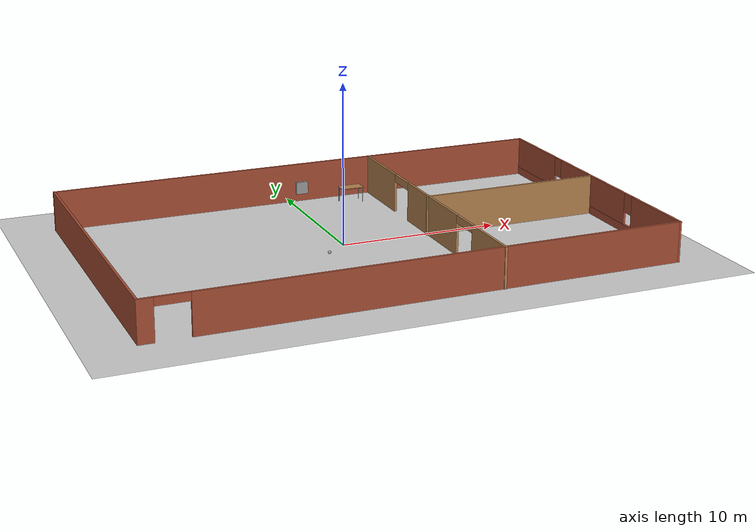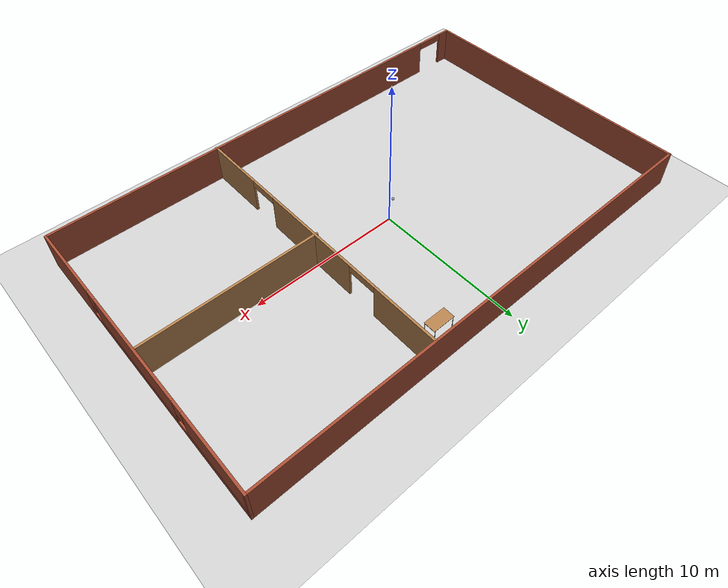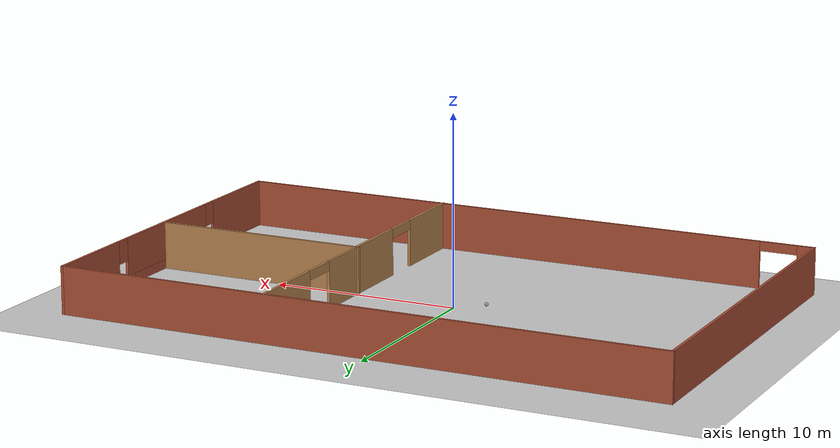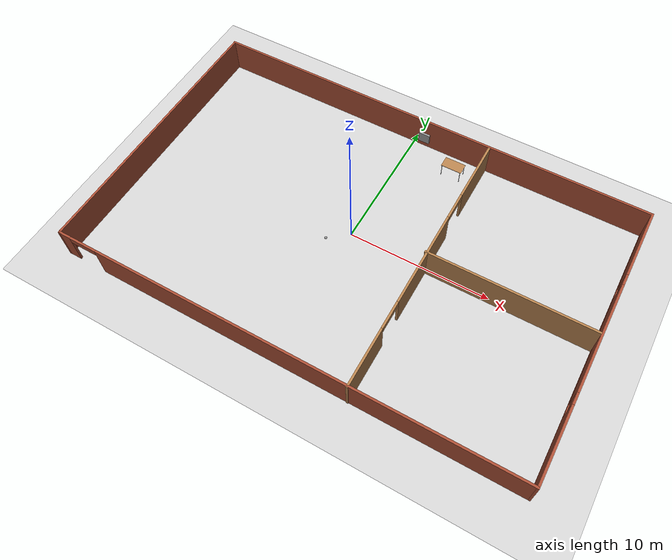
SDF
<sdf version="1.6">
 <world name="default">
  <light name="sun" type="directional">
   <pose>0 0 10 0 -0 0</pose>
   <diffuse>0.8 0.8 0.8 1</diffuse>
   <specular>0.2 0.2 0.2 1</specular>
   <attenuation>
    <range>1000</range>
    <constant>0.9</constant>
    <linear>0.01</linear>
    <quadratic>0.001</quadratic>
   </attenuation>
   <direction>-0.5 0.1 -0.9</direction>
  </light>
  <model name="ground_plane">
   <static>1</static>
   <link name="link">
    <collision name="collision">
     <geometry><plane><normal>0 0 1</normal><size>100 100</size></plane></geometry>
     <surface><friction><ode><mu>100</mu><mu2>50</mu2></ode></friction></surface>
    </collision>
    <visual name="visual">
     <cast_shadows>0</cast_shadows>
     <geometry><plane><normal>0 0 1</normal><size>100 100</size></plane></geometry>
     <material>
      <script><uri>file://media/materials/scripts/gazebo.material</uri><name>Gazebo/Grey</name></script>
     </material>
    </visual>
   </link>
  </model>
  <gravity>0 0 -9.8</gravity>
  <magnetic_field>6e-06 2.3e-05 -4.2e-05</magnetic_field>
  <atmosphere type="adiabatic"/>
  <physics name="default_physics" default="0" type="ode">
   <max_step_size>0.001</max_step_size>
   <real_time_factor>1</real_time_factor>
   <real_time_update_rate>1000</real_time_update_rate>
  </physics>
  <scene><ambient>0.4 0.4 0.4 1</ambient><background>0.7 0.7 0.7 1</background><shadows>1</shadows></scene>
  <spherical_coordinates>
   <surface_model>EARTH_WGS84</surface_model>
   <latitude_deg>0</latitude_deg>
   <longitude_deg>0</longitude_deg>
   <elevation>0</elevation>
   <heading_deg>0</heading_deg>
  </spherical_coordinates>
  <model name="myBuilding">
   <pose>0.77611 -0.4332 0 0 -0 0</pose>
   <link name="Wall_14">
    <pose>0 -9.7767 0 0 -0 0</pose>
    <visual name="Wall_14_Visual_0">
     <pose>-15.7746 0 1.25 0 -0 0</pose>
     <geometry><box><size>0.950826 0.15 2.5</size></box></geometry>
     <material>
      <script><uri>file://media/materials/scripts/gazebo.material</uri><name>Gazebo/Bricks</name></script>
      <ambient>0.435294 0.796078 0.67451 1</ambient>
     </material>
     <meta><layer>0</layer></meta>
    </visual>
    <collision name="Wall_14_Collision_0">
     <geometry><box><size>0.950826 0.15 2.5</size></box></geometry>
     <pose>-15.7746 0 1.25 0 -0 0</pose>
    </collision>
    <visual name="Wall_14_Visual_1">
     <pose>1.47541 0 1.25 0 -0 0</pose>
     <geometry><box><size>29.5492 0.15 2.5</size></box></geometry>
     <material>
      <script><uri>file://media/materials/scripts/gazebo.material</uri><name>Gazebo/Bricks</name></script>
      <ambient>0.435294 0.796078 0.67451 1</ambient>
     </material>
     <meta><layer>0</layer></meta>
    </visual>
    <collision name="Wall_14_Collision_1">
     <geometry><box><size>29.5492 0.15 2.5</size></box></geometry>
     <pose>1.47541 0 1.25 0 -0 0</pose>
    </collision>
    <visual name="Wall_14_Visual_2">
     <pose>-14.2992 0 2.25 0 -0 0</pose>
     <geometry><box><size>2 0.15 0.5</size></box></geometry>
     <material>
      <script><uri>file://media/materials/scripts/gazebo.material</uri><name>Gazebo/Bricks</name></script>
      <ambient>0.435294 0.796078 0.67451 1</ambient>
     </material>
     <meta><layer>0</layer></meta>
    </visual>
    <collision name="Wall_14_Collision_2">
     <geometry><box><size>2 0.15 0.5</size></box></geometry>
     <pose>-14.2992 0 2.25 0 -0 0</pose>
    </collision>
   </link>
   <link name="Wall_15">
    <pose>16.175 0.023299 0 0 -0 1.5708</pose>
    <visual name="Wall_15_Visual_0">
     <pose>-7.27902 0 1.25 0 -0 0</pose>
     <geometry><box><size>5.19197 0.15 2.5</size></box></geometry>
     <material>
      <script><uri>file://media/materials/scripts/gazebo.material</uri><name>Gazebo/Bricks</name></script>
      <ambient>1 1 1 1</ambient>
     </material>
     <meta><layer>0</layer></meta>
    </visual>
    <collision name="Wall_15_Collision_0">
     <geometry><box><size>5.19197 0.15 2.5</size></box></geometry>
     <pose>-7.27902 0 1.25 0 -0 0</pose>
    </collision>
    <visual name="Wall_15_Visual_1">
     <pose>2.59599 0 0.25 0 -0 0</pose>
     <geometry><box><size>14.558 0.15 0.5</size></box></geometry>
     <material>
      <script><uri>file://media/materials/scripts/gazebo.material</uri><name>Gazebo/Bricks</name></script>
      <ambient>1 1 1 1</ambient>
     </material>
     <meta><layer>0</layer></meta>
    </visual>
    <collision name="Wall_15_Collision_1">
     <geometry><box><size>14.558 0.15 0.5</size></box></geometry>
     <pose>2.59599 0 0.25 0 -0 0</pose>
    </collision>
    <visual name="Wall_15_Visual_2">
     <pose>0.021476 0 1.5 0 -0 0</pose>
     <geometry><box><size>7.80901 0.15 2</size></box></geometry>
     <material>
      <script><uri>file://media/materials/scripts/gazebo.material</uri><name>Gazebo/Bricks</name></script>
      <ambient>1 1 1 1</ambient>
     </material>
     <meta><layer>0</layer></meta>
    </visual>
    <collision name="Wall_15_Collision_2">
     <geometry><box><size>7.80901 0.15 2</size></box></geometry>
     <pose>0.021476 0 1.5 0 -0 0</pose>
    </collision>
    <visual name="Wall_15_Visual_3">
     <pose>7.30049 0 1.5 0 -0 0</pose>
     <geometry><box><size>5.14902 0.15 2</size></box></geometry>
     <material>
      <script><uri>file://media/materials/scripts/gazebo.material</uri><name>Gazebo/Bricks</name></script>
      <ambient>1 1 1 1</ambient>
     </material>
     <meta><layer>0</layer></meta>
    </visual>
    <collision name="Wall_15_Collision_3">
     <geometry><box><size>5.14902 0.15 2</size></box></geometry>
     <pose>7.30049 0 1.5 0 -0 0</pose>
    </collision>
    <visual name="Wall_15_Visual_4">
     <pose>-4.28303 0 1.9 0 -0 0</pose>
     <geometry><box><size>0.8 0.15 1.2</size></box></geometry>
     <material>
      <script><uri>file://media/materials/scripts/gazebo.material</uri><name>Gazebo/Bricks</name></script>
      <ambient>1 1 1 1</ambient>
     </material>
     <meta><layer>0</layer></meta>
    </visual>
    <collision name="Wall_15_Collision_4">
     <geometry><box><size>0.8 0.15 1.2</size></box></geometry>
     <pose>-4.28303 0 1.9 0 -0 0</pose>
    </collision>
    <visual name="Wall_15_Visual_5">
     <pose>4.32598 0 1.9 0 -0 0</pose>
     <geometry><box><size>0.8 0.15 1.2</size></box></geometry>
     <material>
      <script><uri>file://media/materials/scripts/gazebo.material</uri><name>Gazebo/Bricks</name></script>
      <ambient>1 1 1 1</ambient>
     </material>
     <meta><layer>0</layer></meta>
    </visual>
    <collision name="Wall_15_Collision_5">
     <geometry><box><size>0.8 0.15 1.2</size></box></geometry>
     <pose>4.32598 0 1.9 0 -0 0</pose>
    </collision>
   </link>
   <link name="Wall_16">
    <collision name="Wall_16_Collision">
     <geometry><box><size>32.5 0.15 2.5</size></box></geometry>
     <pose>0 0 1.25 0 -0 0</pose>
    </collision>
    <visual name="Wall_16_Visual">
     <pose>0 0 1.25 0 -0 0</pose>
     <geometry><box><size>32.5 0.15 2.5</size></box></geometry>
     <material>
      <script><uri>file://media/materials/scripts/gazebo.material</uri><name>Gazebo/Bricks</name></script>
      <ambient>0.435294 0.796078 0.67451 1</ambient>
     </material>
     <meta><layer>0</layer></meta>
    </visual>
    <pose>0 9.8233 0 0 -0 3.14159</pose>
   </link>
   <link name="Wall_17">
    <collision name="Wall_17_Collision">
     <geometry><box><size>19.75 0.15 2.5</size></box></geometry>
     <pose>0 0 1.25 0 -0 0</pose>
    </collision>
    <visual name="Wall_17_Visual">
     <pose>0 0 1.25 0 -0 0</pose>
     <geometry><box><size>19.75 0.15 2.5</size></box></geometry>
     <material>
      <script><uri>file://media/materials/scripts/gazebo.material</uri><name>Gazebo/Bricks</name></script>
      <ambient>1 1 1 1</ambient>
     </material>
     <meta><layer>0</layer></meta>
    </visual>
    <pose>-16.175 0.023299 0 0 0 -1.5708</pose>
   </link>
   <link name="Wall_19">
    <pose>4.79037 -0.023299 0 0 0 -1.5708</pose>
    <visual name="Wall_19_Visual_0">
     <pose>-7.577 0 1.25 0 -0 0</pose>
     <geometry><box><size>4.596 0.15 2.5</size></box></geometry>
     <material>
      <script><uri>file://media/materials/scripts/gazebo.material</uri><name>Gazebo/Wood</name></script>
      <ambient>1 1 1 1</ambient>
     </material>
     <meta><layer>0</layer></meta>
    </visual>
    <collision name="Wall_19_Collision_0">
     <geometry><box><size>4.596 0.15 2.5</size></box></geometry>
     <pose>-7.577 0 1.25 0 -0 0</pose>
    </collision>
    <visual name="Wall_19_Visual_1">
     <pose>0.212654 0 1.25 0 -0 0</pose>
     <geometry><box><size>6.98332 0.15 2.5</size></box></geometry>
     <material>
      <script><uri>file://media/materials/scripts/gazebo.material</uri><name>Gazebo/Wood</name></script>
      <ambient>1 1 1 1</ambient>
     </material>
     <meta><layer>0</layer></meta>
    </visual>
    <collision name="Wall_19_Collision_1">
     <geometry><box><size>6.98332 0.15 2.5</size></box></geometry>
     <pose>0.212654 0 1.25 0 -0 0</pose>
    </collision>
    <visual name="Wall_19_Visual_2">
     <pose>7.78966 0 1.25 0 -0 0</pose>
     <geometry><box><size>4.17069 0.15 2.5</size></box></geometry>
     <material>
      <script><uri>file://media/materials/scripts/gazebo.material</uri><name>Gazebo/Wood</name></script>
      <ambient>1 1 1 1</ambient>
     </material>
     <meta><layer>0</layer></meta>
    </visual>
    <collision name="Wall_19_Collision_2">
     <geometry><box><size>4.17069 0.15 2.5</size></box></geometry>
     <pose>7.78966 0 1.25 0 -0 0</pose>
    </collision>
    <visual name="Wall_19_Visual_3">
     <pose>-4.279 0 2.25 0 -0 0</pose>
     <geometry><box><size>2 0.15 0.5</size></box></geometry>
     <material>
      <script><uri>file://media/materials/scripts/gazebo.material</uri><name>Gazebo/Wood</name></script>
      <ambient>1 1 1 1</ambient>
     </material>
     <meta><layer>0</layer></meta>
    </visual>
    <collision name="Wall_19_Collision_3">
     <geometry><box><size>2 0.15 0.5</size></box></geometry>
     <pose>-4.279 0 2.25 0 -0 0</pose>
    </collision>
    <visual name="Wall_19_Visual_4">
     <pose>4.70431 0 2.25 0 -0 0</pose>
     <geometry><box><size>2 0.15 0.5</size></box></geometry>
     <material>
      <script><uri>file://media/materials/scripts/gazebo.material</uri><name>Gazebo/Wood</name></script>
      <ambient>1 1 1 1</ambient>
     </material>
     <meta><layer>0</layer></meta>
    </visual>
    <collision name="Wall_19_Collision_4">
     <geometry><box><size>2 0.15 0.5</size></box></geometry>
     <pose>4.70431 0 2.25 0 -0 0</pose>
    </collision>
   </link>
   <link name="Wall_21">
    <collision name="Wall_21_Collision">
     <geometry><box><size>11.5 0.15 2.5</size></box></geometry>
     <pose>0 0 1.25 0 -0 0</pose>
    </collision>
    <visual name="Wall_21_Visual">
     <pose>0 0 1.25 0 -0 0</pose>
     <geometry><box><size>11.5 0.15 2.5</size></box></geometry>
     <material>
      <script><uri>file://media/materials/scripts/gazebo.material</uri><name>Gazebo/Wood</name></script>
      <ambient>0.996078 0.47451 0.0196078 1</ambient>
     </material>
     <meta><layer>0</layer></meta>
    </visual>
    <pose>10.3718 0.231928 0 0 -0 0</pose>
   </link>
   <link name="Window_0">
    <collision name="Window_0_Collision">
     <geometry><box><size>0.8 0.17 0.8</size></box></geometry>
     <pose>0 0 0.4 0 -0 0</pose>
    </collision>
    <visual name="Window_0_Visual">
     <pose>0 0 0.4 0 -0 0</pose>
     <geometry><box><size>0.8 0.17 0.8</size></box></geometry>
     <material>
      <script><uri>file://media/materials/scripts/gazebo.material</uri><name>Gazebo/Grey</name></script>
     </material>
    </visual>
    <pose>0.017986 9.68313 0.5 0 -0 0</pose>
   </link>
   <static>1</static>
  </model>
  <model name="table">
   <static>1</static>
   <link name="link">
    <collision name="surface">
     <pose>0 0 1 0 -0 0</pose>
     <geometry><box><size>1.5 0.8 0.03</size></box></geometry>
     <surface><friction><ode><mu>0.6</mu><mu2>0.6</mu2></ode></friction></surface>
    </collision>
    <visual name="visual1">
     <pose>0 0 1 0 -0 0</pose>
     <geometry><box><size>1.5 0.8 0.03</size></box></geometry>
     <material>
      <script><uri>file://media/materials/scripts/gazebo.material</uri><name>Gazebo/Wood</name></script>
     </material>
    </visual>
    <collision name="front_left_leg">
     <pose>0.68 0.38 0.5 0 -0 0</pose>
     <geometry><cylinder><radius>0.02</radius><length>1</length></cylinder></geometry>
    </collision>
    <visual name="front_left_leg">
     <pose>0.68 0.38 0.5 0 -0 0</pose>
     <geometry><cylinder><radius>0.02</radius><length>1</length></cylinder></geometry>
     <material>
      <script><uri>file://media/materials/scripts/gazebo.material</uri><name>Gazebo/Grey</name></script>
     </material>
    </visual>
    <collision name="front_right_leg">
     <pose>0.68 -0.38 0.5 0 -0 0</pose>
     <geometry><cylinder><radius>0.02</radius><length>1</length></cylinder></geometry>
    </collision>
    <visual name="front_right_leg">
     <pose>0.68 -0.38 0.5 0 -0 0</pose>
     <geometry><cylinder><radius>0.02</radius><length>1</length></cylinder></geometry>
     <material>
      <script><uri>file://media/materials/scripts/gazebo.material</uri><name>Gazebo/Grey</name></script>
     </material>
    </visual>
    <collision name="back_right_leg">
     <pose>-0.68 -0.38 0.5 0 -0 0</pose>
     <geometry><cylinder><radius>0.02</radius><length>1</length></cylinder></geometry>
    </collision>
    <visual name="back_right_leg">
     <pose>-0.68 -0.38 0.5 0 -0 0</pose>
     <geometry><cylinder><radius>0.02</radius><length>1</length></cylinder></geometry>
     <material>
      <script><uri>file://media/materials/scripts/gazebo.material</uri><name>Gazebo/Grey</name></script>
     </material>
    </visual>
    <collision name="back_left_leg">
     <pose>-0.68 0.38 0.5 0 -0 0</pose>
     <geometry><cylinder><radius>0.02</radius><length>1</length></cylinder></geometry>
    </collision>
    <visual name="back_left_leg">
     <pose>-0.68 0.38 0.5 0 -0 0</pose>
     <geometry><cylinder><radius>0.02</radius><length>1</length></cylinder></geometry>
     <material>
      <script><uri>file://media/materials/scripts/gazebo.material</uri><name>Gazebo/Grey</name></script>
     </material>
    </visual>
   </link>
   <pose>3.7063 7.9011 0 0 -0 0</pose>
  </model>
  <model name="my_ball">
   <link name="link_0">
    <inertial>
     <mass>1</mass>
     <inertia><ixx>0.1</ixx><ixy>0</ixy><ixz>0</ixz><iyy>0.1</iyy><iyz>0</iyz><izz>0.1</izz></inertia>
    </inertial>
    <visual name="visual">
     <geometry><sphere><radius>0.1</radius></sphere></geometry>
     <material>
      <lighting>1</lighting>
      <script><uri>file://media/materials/scripts/gazebo.material</uri><name>Gazebo/Grey</name></script>
      <ambient>1 1 1 1</ambient>
      <diffuse>1 1 1 1</diffuse>
      <specular>1 1 1 1</specular>
      <emissive>1 1 1 1</emissive>
      <shader type="vertex"><normal_map>__default__</normal_map></shader>
     </material>
    </visual>
    <collision name="collision">
     <geometry><sphere><radius>0.1</radius></sphere></geometry>
     <surface>
      <friction>
       <ode><mu>1</mu><mu2>1</mu2><fdir1>0 0 0</fdir1><slip1>0</slip1><slip2>0</slip2></ode>
       <torsional>
        <coefficient>1</coefficient>
        <patch_radius>0</patch_radius>
        <surface_radius>0</surface_radius>
        <use_patch_radius>1</use_patch_radius>
        <ode><slip>0</slip></ode>
       </torsional>
      </friction>
      <bounce><restitution_coefficient>0</restitution_coefficient><threshold>1e+06</threshold></bounce>
      <contact>
       <collide_without_contact>0</collide_without_contact>
       <collide_without_contact_bitmask>1</collide_without_contact_bitmask>
       <collide_bitmask>1</collide_bitmask>
       <ode>
        <soft_cfm>0</soft_cfm>
        <soft_erp>0.2</soft_erp>
        <kp>1e+13</kp>
        <kd>1</kd>
        <max_vel>0.01</max_vel>
        <min_depth>0</min_depth>
       </ode>
       <bullet>
        <split_impulse>1</split_impulse>
        <split_impulse_penetration_threshold>-0.01</split_impulse_penetration_threshold>
        <soft_cfm>0</soft_cfm>
        <soft_erp>0.2</soft_erp>
        <kp>1e+13</kp>
        <kd>1</kd>
       </bullet>
      </contact>
     </surface>
    </collision>
   </link>
   <static>0</static>
   <pose>-1.33045 -1.09675 0.1 0 -0 0</pose>
  </model>
 </world>
</sdf>
